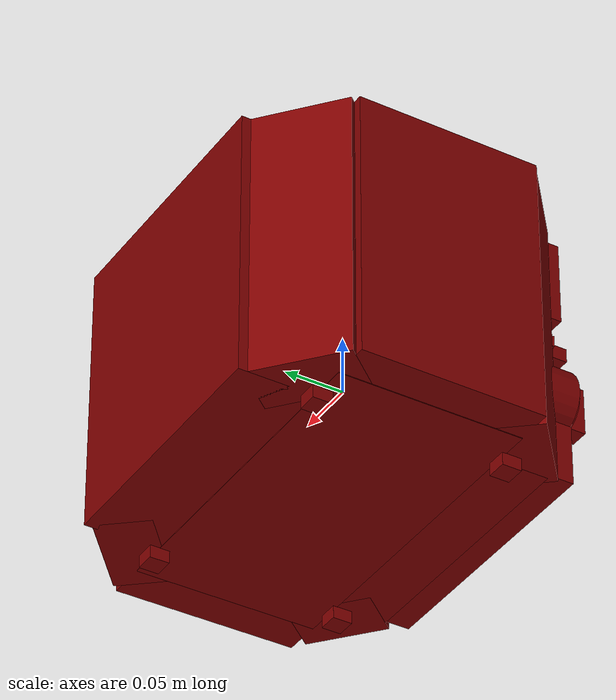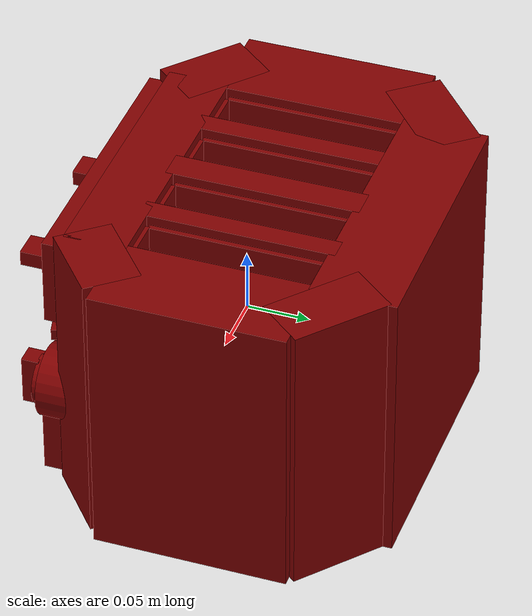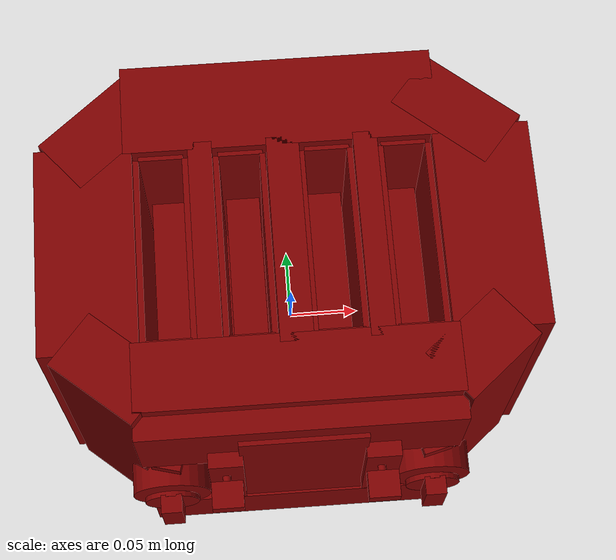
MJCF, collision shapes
<?xml version='1.0' encoding='UTF-8'?>
<mujoco model="model">
  <option timestep="0.002" gravity="0.0 0.0 -9.81"/>
  <compiler angle="radian"/>
  <asset>
    <mesh file="visuals/sideL_button_cancel.obj" name="sideL_button_cancel_vis"/>
    <mesh file="visuals/sideL_knob_doneness.obj" name="sideL_knob_doneness_vis"/>
    <mesh file="visuals/sideL_lever.obj" name="sideL_lever_vis"/>
    <mesh file="visuals/sideR_button_cancel.obj" name="sideR_button_cancel_vis"/>
    <mesh file="visuals/sideR_knob_doneness.obj" name="sideR_knob_doneness_vis"/>
    <mesh file="visuals/sideR_lever.obj" name="sideR_lever_vis"/>
    <mesh file="visuals/Body001.obj" name="Body001_vis"/>
    <mesh file="visuals/Body002.obj" name="Body002_vis"/>
    <texture file="visuals/T_BC001.png" name="Body001_material" type="2d"/>
    <material name="Body001_material" rgba="1 1 1 1.0" texture="Body001_material" shininess="0.5" specular="0.3103448502657381"/>
    <texture file="visuals/T_BC001.png" name="sideL_button_cancel_material" type="2d"/>
    <material name="sideL_button_cancel_material" rgba="1 1 1 1.0" texture="sideL_button_cancel_material" shininess="0.5" specular="0.3103448502657381"/>
    <texture file="visuals/T_BC001.png" name="sideL_knob_doneness_material" type="2d"/>
    <material name="sideL_knob_doneness_material" rgba="1 1 1 1.0" texture="sideL_knob_doneness_material" shininess="0.5" specular="0.3103448502657381"/>
    <texture file="visuals/T_BC001.png" name="sideL_lever_material" type="2d"/>
    <material name="sideL_lever_material" rgba="1 1 1 1.0" texture="sideL_lever_material" shininess="0.5" specular="0.3103448502657381"/>
    <texture file="visuals/T_BC001.png" name="sideR_button_cancel_material" type="2d"/>
    <material name="sideR_button_cancel_material" rgba="1 1 1 1.0" texture="sideR_button_cancel_material" shininess="0.5" specular="0.3103448502657381"/>
    <texture file="visuals/T_BC001.png" name="sideR_knob_doneness_material" type="2d"/>
    <material name="sideR_knob_doneness_material" rgba="1 1 1 1.0" texture="sideR_knob_doneness_material" shininess="0.5" specular="0.3103448502657381"/>
    <texture file="visuals/T_BC001.png" name="sideR_lever_material" type="2d"/>
    <material name="sideR_lever_material" rgba="1 1 1 1.0" texture="sideR_lever_material" shininess="0.5" specular="0.3103448502657381"/>
    <texture file="visuals/T_BC001.png" name="Body002_material" type="2d"/>
    <material name="Body002_material" rgba="1 1 1 1.0" texture="Body002_material" shininess="1" specular="1"/>
  </asset>
  <default>
    <default class="visual">
      <geom conaffinity="0" contype="0" group="1" type="mesh"/>
    </default>
    <default class="collision_1">
      <geom group="0" rgba="0.5 0 0 0.5" solref="0.004 1" solimp="0.998 0.998 0.001"/>
    </default>
    <default class="collision_2">
      <geom group="0" rgba="0.5 0 0 0.5" solref="0.004 1" solimp="0.998 0.998 0.001"/>
    </default>
    <default class="collision_3">
      <geom group="0" rgba="0.5 0 0 0.5" solref="0.004 1" solimp="0.998 0.998 0.001"/>
    </default>
    <default class="collision_4">
      <geom group="0" rgba="0.5 0 0 0.5" solref="0.004 1" solimp="0.998 0.998 0.001"/>
    </default>
    <default class="collision_5">
      <geom group="0" rgba="0.5 0 0 0.5" solref="0.004 1" solimp="0.998 0.998 0.001"/>
    </default>
    <default class="collision_6">
      <geom group="0" rgba="0.5 0 0 0.5" solref="0.004 1" solimp="0.998 0.998 0.001"/>
    </default>
    <default class="collision_7">
      <geom group="0" rgba="0.5 0 0 0.5" solref="0.004 1" solimp="0.998 0.998 0.001"/>
    </default>
    <default class="collision_8">
      <geom group="0" rgba="0.5 0 0 0.5" solref="0.004 1" solimp="0.998 0.998 0.001"/>
    </default>
    <default class="spawn">
      <geom group="0" rgba="1 1 1 0.5" contype="0" conaffinity="0"/>
      <site group="0" rgba="1 1 1 0.5"/>
    </default>
    <default class="region">
      <geom group="1" conaffinity="0" contype="0" rgba="0 1 0 0" mass="0"/>
    </default>
  </default>
  <worldbody>
    <body>
      <body name="object">
        <geom mesh="Body001_vis" type="mesh" solimp="0.998 0.998 0.001" solref="0.001 1" friction="0.95 0.3 0.1" class="visual" material="Body001_material"/>
        <geom type="box" pos="-0.14172929525375366 0.015817148610949516 0.0056557320058345795" size="0.034604761749506 0.07647000253200531 0.1145644336938858" quat="1.0 0.0 0.0 0.0" class="collision_1"/>
        <geom type="box" pos="0.14105713367462158 0.015817148610949516 0.0056557320058345795" size="0.034604761749506 0.07647000253200531 0.11456446349620819" quat="1.0 0.0 0.0 0.0" class="collision_1"/>
        <geom type="box" pos="0.00014714288408868015 0.015817148610949516 0.0056557320058345795" size="0.011663300916552544 0.07646971195936203 0.1145649179816246" quat="1.0 0.0 0.0 0.0" class="collision_1"/>
        <geom type="box" pos="-0.0009645466925576329 0.1206241250038147 0.0056557320058345795" size="0.11235687136650085 0.033788811415433884 0.1145649179816246" quat="1.0 0.0 0.0 0.0" class="collision_1"/>
        <geom type="box" pos="-0.0009645466925576329 -0.07915101200342178 0.0056557320058345795" size="0.11235687136650085 0.024625087156891823 0.1145649179816246" quat="1.0 0.0 0.0 0.0" class="collision_1"/>
        <geom type="box" pos="-0.05883101373910904 0.015817148610949516 0.0056557320058345795" size="0.00859940703958273 0.07646976411342621 0.1145649179816246" quat="1.0 0.0 0.0 0.0" class="collision_1"/>
        <geom type="box" pos="0.05899663269519806 0.015817148610949516 0.0056557320058345795" size="0.00859940703958273 0.076469786465168 0.1145649179816246" quat="1.0 0.0 0.0 0.0" class="collision_1"/>
        <geom type="box" pos="-0.12707635760307312 0.10570249706506729 0.0056557320058345795" size="0.04039281979203224 0.022680848836898804 0.1145649179816246" quat="0.9396926164627075 0.0 0.0 0.3420201539993286" class="collision_1"/>
        <geom type="box" pos="0.12562860548496246 0.10570249706506729 0.0056557320058345795" size="0.04039281979203224 0.022680848836898804 0.1145649179816246" quat="0.9396926164627075 0.0 0.0 -0.3420201539993286" class="collision_1"/>
        <geom type="box" pos="0.12562860548496246 -0.07143163681030273 0.0056557320058345795" size="0.033461496233940125 0.022680848836898804 0.1145649179816246" quat="0.3420201539993286 0.0 0.0 -0.9396926164627075" class="collision_1"/>
        <geom type="box" pos="-0.12707635760307312 -0.07143167406320572 0.0056557320058345795" size="0.03591546788811684 0.022680848836898804 0.1145649179816246" quat="0.34202003479003906 0.0 0.0 0.9396926760673523" class="collision_1"/>
        <geom type="box" pos="-0.0009645466925576329 0.015817148610949516 -0.07156917452812195" size="0.1447247713804245 0.07647000253200531 0.03792557120323181" quat="1.0 0.0 0.0 0.0" class="collision_1"/>
        <geom type="box" pos="-0.11608884483575821 0.09239614754915237 -0.11462190747261047" size="0.008337839506566525 0.008143988437950611 0.005357668269425631" quat="1.0 0.0 0.0 0.0" class="collision_1"/>
        <geom type="box" pos="0.11664550751447678 0.09239614754915237 -0.11462190747261047" size="0.008337841369211674 0.00814399030059576 0.005357668269425631" quat="1.0 0.0 0.0 0.0" class="collision_1"/>
        <geom type="box" pos="-0.11608884483575821 -0.06530660390853882 -0.11462190747261047" size="0.008337843231856823 0.00814399216324091 0.005357668269425631" quat="1.0 0.0 0.0 0.0" class="collision_1"/>
        <geom type="box" pos="0.11664550751447678 -0.06530660390853882 -0.11462190747261047" size="0.008337845094501972 0.008143994025886059 0.005357668269425631" quat="1.0 0.0 0.0 0.0" class="collision_1"/>
        <geom type="cylinder" pos="-0.09793946892023087 -0.11229516565799713 -0.030136441811919212" size="0.029281342402100563 0.013490691781044006" quat="0.7071068286895752 0.7071067690849304 -1.5700924318127872e-16 -5.9269340452702814e-24" class="collision_1"/>
        <geom type="cylinder" pos="0.0977095291018486 -0.11229516565799713 -0.029215261340141296" size="0.028824597597122192 0.01328025572001934" quat="0.7071068286895752 0.7071067690849304 -1.5700922994638892e-16 -1.0606174128406802e-23" class="collision_1"/>
        <geom type="box" pos="-0.0009645466925576329 -0.11419861763715744 -0.07915717363357544" size="0.11235687136650085 0.01184391975402832 0.02652960829436779" quat="1.0 0.0 0.0 0.0" class="collision_1"/>
        <geom type="box" pos="-0.05459017679095268 -0.12111537158489227 0.01986023038625717" size="0.012338492088019848 0.010644311085343361 0.046500224620103836" quat="1.0 0.0 0.0 0.0" class="collision_1"/>
        <geom type="box" pos="0.00036077946424484253 -0.11444919556379318 0.01587756723165512" size="0.04511181637644768 0.009701150469481945 0.0764128714799881" quat="1.0 0.0 0.0 0.0" class="collision_1"/>
        <geom type="box" pos="-0.0009645466925576329 -0.10994076728820801 0.07458801567554474" size="0.11348836869001389 0.010791265405714512 0.03556706756353378" quat="1.0 0.0 0.0 0.0" class="collision_1"/>
        <geom type="box" pos="0.05618317797780037 -0.12111537158489227 0.01986023038625717" size="0.012338492088019848 0.010644311085343361 0.046500224620103836" quat="1.0 0.0 0.0 0.0" class="collision_1"/>
        <body name="sideL_button_cancel">
          <joint axis="0.23688821494579315 0.9715368747711182 0.0" pos="-0.09814552962779999 -0.11692027747631073 0.023036032915115356" limited="true" name="sideL_button_cancel_joint" range="0.0 0.002" type="slide" damping="1" frictionloss="1" armature=".01" stiffness="4" springref="-1"/>
          <geom mesh="sideL_button_cancel_vis" type="mesh" solimp="0.998 0.998 0.001" solref="0.001 1" friction="0.95 0.3 0.1" class="visual" material="sideL_button_cancel_material"/>
          <geom class="collision_2" type="box" pos="-0.09797513484954834 -0.11681856960058212 0.023036032915115356" size="0.01073279045522213 0.003315222216770053 0.004554397892206907" quat="0.9918488264083862 0.0 0.0 -0.12742026150226593" name="sideL_button_cancel_main"/>
        </body>
        <body name="sideL_knob_doneness">
          <joint axis="0.0 1.0 0.0" pos="-0.097976453602314 -0.13500334322452545 -0.029979873448610306" limited="true" name="sideL_knob_doneness_joint" range="0.0 4.974188368183839" type="hinge" damping="0.05" frictionloss="0.75" armature="1"/>
          <geom mesh="sideL_knob_doneness_vis" type="mesh" solimp="0.998 0.998 0.001" solref="0.001 1" friction="0.95 0.3 0.1" class="visual" material="sideL_knob_doneness_material"/>
          <geom type="cylinder" pos="-0.09797513484954834 -0.12962616980075836 -0.02997979149222374" size="0.020374925807118416 0.0019433266716077924" quat="0.7071068286895752 0.7071067690849304 -1.5700922994638892e-16 -5.926933650839829e-24" class="collision_3" friction="100 0.5 0.01"/>
          <geom class="collision_3" type="box" pos="-0.09797513484954834 -0.13714677095413208 -0.02997979149222374" size="0.007797203026711941 0.006897462531924248 0.019859323278069496" quat="1.0 0.0 0.0 0.0" name="sideL_knob_doneness_main" friction="100 0.5 0.01"/>
        </body>
        <body name="sideL_lever">
          <joint axis="0.0 0.0 -1.0" pos="-0.05451972037553787 -0.1397016942501068 0.053542591631412506" limited="true" name="sideL_lever_joint" range="0.0 0.06" type="slide" damping="1" frictionloss="1" armature=".1" stiffness="2.8" springref="-0.5"/>
          <geom class="region" name="reg_sideL_slotR" type="box" pos="-0.031049706041812897 0.016001909971237183 0.11891322955489159" size="0.014777229934930802 0.06721278822422028 0.07600023022294045"/>
          <geom class="region" name="reg_sideL_slotL" type="box" pos="-0.08729702979326248 0.016001909971237183 0.11891299858689308" size="0.01556669718027115 0.06721278822422028 0.07599999925494194"/>
          <geom mesh="sideL_lever_vis" type="mesh" solimp="0.998 0.998 0.001" solref="0.001 1" friction="0.95 0.3 0.1" class="visual" material="sideL_lever_material"/>
          <geom type="cylinder" pos="-0.054409731179475784 -0.13891613483428955 0.053396500647068024" size="0.0029476557392627 0.003998193424195051" quat="0.7071068286895752 0.7071067690849304 -1.5700922994638892e-16 -1.528541381711287e-23" class="collision_4"/>
          <geom class="collision_4" type="box" pos="-0.054409731179475784 -0.14917054772377014 0.053396500647068024" size="0.011082443408668041 0.009575016796588898 0.006027932744473219" quat="1.0 0.0 0.0 0.0" name="sideL_lever_handle"/>
          <geom class="collision_4" type="box" pos="-0.08632217347621918 0.01587485894560814 0.041380397975444794" size="0.012550000101327896 0.06499999761581421 0.0007069805287756026" quat="1.0 0.0 0.0 0.0" name="sideL_slotL_floor"/>
          <geom class="collision_4" type="box" pos="-0.030671432614326477 0.01587485894560814 0.0413803905248642" size="0.012550000101327896 0.06499999761581421 0.0007069749990478158" quat="1.0 0.0 0.0 0.0" name="sideL_slotR_floor"/>
        </body>
        <body name="sideR_button_cancel">
          <joint axis="-0.2384166121482849 0.9711630344390869 0.0" pos="0.09814588725566864 -0.11692027747631073 0.023036032915115356" limited="true" name="sideR_button_cancel_joint" range="0.0 0.002" type="slide" damping="1" frictionloss="1" armature=".01" stiffness="4" springref="-1"/>
          <geom mesh="sideR_button_cancel_vis" type="mesh" solimp="0.998 0.998 0.001" solref="0.001 1" friction="0.95 0.3 0.1" class="visual" material="sideR_button_cancel_material"/>
          <geom class="collision_5" type="box" pos="0.09797549247741699 -0.11681856960058212 0.023036032915115356" size="0.010732791386544704 0.003315222216770053 0.004554397892206907" quat="3.893341826710639e-08 -0.12742029130458832 0.9918488264083862 2.894502415529132e-07" name="sideR_button_cancel_main"/>
        </body>
        <body name="sideR_knob_doneness">
          <joint axis="0.0 1.0 0.0" pos="0.09797417372465134 -0.13500334322452545 -0.029979873448610306" limited="true" name="sideR_knob_doneness_joint" range="0.0 4.974188368183839" type="hinge" damping="0.05" frictionloss="0.75" armature="1"/>
          <geom mesh="sideR_knob_doneness_vis" type="mesh" solimp="0.998 0.998 0.001" solref="0.001 1" friction="0.95 0.3 0.1" class="visual" material="sideR_knob_doneness_material"/>
          <geom type="cylinder" pos="0.09797549247741699 -0.1295967847108841 -0.02997979149222374" size="0.02034541219472885 0.0021463471930474043" quat="0.7071068286895752 0.7071067690849304 -1.5700922994638892e-16 -5.926933650839829e-24" class="collision_6" friction="100 0.5 0.01"/>
          <geom class="collision_6" type="box" pos="0.09812764823436737 -0.13714677095413208 -0.02997979149222374" size="0.007797203026711941 0.006897462531924248 0.019859323278069496" quat="1.0 0.0 0.0 0.0" name="sideR_knob_doneness_main" friction="100 0.5 0.01"/>
        </body>
        <body name="sideR_lever">
          <joint axis="0.0 0.0 -1.0" pos="0.05440133064985275 -0.1397016942501068 0.053542591631412506" limited="true" name="sideR_lever_joint" range="0.0 0.06" type="slide" damping="1" frictionloss="1" armature=".1" stiffness="2.8" springref="-0.5"/>
          <geom class="region" name="reg_sideR_slotR" type="box" pos="0.08695735037326813 0.016001909971237183 0.11891322955489159" size="0.01480329579114914 0.06721278822422028 0.07600023022294045"/>
          <geom class="region" name="reg_sideR_slotL" type="box" pos="0.03063328005373478 0.016001909971237183 0.11891322955489159" size="0.014988027349114419 0.06721278822422028 0.07600023022294045"/>
          <geom mesh="sideR_lever_vis" type="mesh" solimp="0.998 0.998 0.001" solref="0.001 1" friction="0.95 0.3 0.1" class="visual" material="sideR_lever_material"/>
          <geom type="cylinder" pos="0.05441014841198921 -0.13879063725471497 0.053396500647068024" size="0.0029476557392627 0.003998193424195051" quat="0.7071068286895752 0.7071067690849304 -1.5700922994638892e-16 -1.528541381711287e-23" class="collision_7"/>
          <geom class="collision_7" type="box" pos="0.05441014841198921 -0.14904505014419556 0.053396500647068024" size="0.011082446202635765 0.00957502145320177 0.006027935538440943" quat="1.0 0.0 0.0 0.0" name="sideR_lever_handle"/>
          <geom class="collision_7" type="box" pos="0.030771881341934204 0.01587485894560814 0.0413803905248642" size="0.012550000101327896 0.06499999761581421 0.0007069749990478158" quat="1.0 0.0 0.0 0.0" name="sideR_slotL_floor"/>
          <geom class="collision_7" type="box" pos="0.08713148534297943 0.01587485894560814 0.0413803905248642" size="0.012550000101327896 0.06499999761581421 0.0007069749990478158" quat="1.0 0.0 0.0 0.0" name="sideR_slotR_floor"/>
        </body>
        <body name="Body002">
          <geom mesh="Body002_vis" type="mesh" solimp="0.998 0.998 0.001" solref="0.001 1" friction="0.95 0.3 0.1" class="visual" material="Body002_material"/>
          <geom type="box" pos="-0.06984309107065201 0.015817148610949516 0.03871316835284233" size="0.0021027105394750834 0.06823010742664337 0.07406066358089447" quat="1.0 0.0 0.0 0.0" class="collision_8"/>
          <geom type="box" pos="-0.104941725730896 0.015817148610949516 0.03871316835284233" size="0.0021027105394750834 0.06823010742664337 0.07406066358089447" quat="1.0 0.0 0.0 0.0" class="collision_8"/>
          <geom type="box" pos="-0.04778110235929489 0.015817148610949516 0.03871316835284233" size="0.0021027105394750834 0.06823010742664337 0.07406066358089447" quat="1.0 0.0 0.0 0.0" class="collision_8"/>
          <geom type="box" pos="-0.014437403529882431 0.015817148610949516 0.03871316835284233" size="0.0021027105394750834 0.06823010742664337 0.07406066358089447" quat="1.0 0.0 0.0 0.0" class="collision_8"/>
          <geom type="box" pos="0.013390796259045601 0.015817148610949516 0.03871316835284233" size="0.0021027105394750834 0.06823010742664337 0.07406066358089447" quat="1.0 0.0 0.0 0.0" class="collision_8"/>
          <geom type="box" pos="0.04798801988363266 0.015817148610949516 0.03871316835284233" size="0.0021027105394750834 0.06823010742664337 0.07406066358089447" quat="1.0 0.0 0.0 0.0" class="collision_8"/>
          <geom type="box" pos="0.07005001604557037 0.015817148610949516 0.03871316835284233" size="0.0021027105394750834 0.06823010742664337 0.07406066358089447" quat="1.0 0.0 0.0 0.0" class="collision_8"/>
          <geom type="box" pos="0.10389512777328491 0.015817148610949516 0.03871316835284233" size="0.0021027105394750834 0.06823010742664337 0.07406066358089447" quat="1.0 0.0 0.0 0.0" class="collision_8"/>
          <geom type="box" pos="0.08634581416845322 0.08564980328083038 0.03871316835284233" size="0.0021027105394750834 0.01603742688894272 0.07406066358089447" quat="0.7071068286895752 0.0 0.0 -0.7071067094802856" class="collision_8"/>
          <geom type="box" pos="0.08634581416845322 -0.05323604494333267 0.03871316835284233" size="0.0021027105394750834 0.01603742688894272 0.07406066358089447" quat="0.7071068286895752 0.0 0.0 -0.7071067094802856" class="collision_8"/>
          <geom type="box" pos="0.031692229211330414 0.08564980328083038 0.03871316835284233" size="0.0021027105394750834 0.01603742688894272 0.07406066358089447" quat="0.7071068286895752 0.0 0.0 -0.7071067094802856" class="collision_8"/>
          <geom type="box" pos="0.031692229211330414 -0.05323604494333267 0.03871316835284233" size="0.0021027105394750834 0.01603742688894272 0.07406066358089447" quat="0.7071068286895752 0.0 0.0 -0.7071067094802856" class="collision_8"/>
          <geom type="box" pos="-0.030231785029172897 0.08564980328083038 0.03871316835284233" size="0.0021027105394750834 0.01603742688894272 0.07406066358089447" quat="0.7071068286895752 0.0 0.0 -0.7071067094802856" class="collision_8"/>
          <geom type="box" pos="-0.030231785029172897 -0.05323604494333267 0.03871316835284233" size="0.0021027105394750834 0.01603742688894272 0.07406066358089447" quat="0.7071068286895752 0.0 0.0 -0.7071067094802856" class="collision_8"/>
          <geom type="box" pos="-0.08714170753955841 0.08564980328083038 0.03871316835284233" size="0.0021027105394750834 0.01603742688894272 0.07406066358089447" quat="0.7071068286895752 0.0 0.0 -0.7071067094802856" class="collision_8"/>
          <geom type="box" pos="-0.08714170753955841 -0.05323604494333267 0.03871316835284233" size="0.0021027105394750834 0.01603742688894272 0.07406066358089447" quat="0.7071068286895752 0.0 0.0 -0.7071067094802856" class="collision_8"/>
        </body>
        <geom class="region" name="reg_main" type="box" pos="3.725290298461914e-09 0.011790886521339417 0.0" size="0.1806974390745163 0.14754140174388886 0.11992426013946533"/>
      </body>
    </body>
  </worldbody>
  <actuator>
    <motor name="sideL_button_cancel_joint_actuator" joint="sideL_button_cancel_joint" gear="0.1"/>
    <motor name="sideL_knob_doneness_joint_actuator" joint="sideL_knob_doneness_joint" gear="10"/>
    <motor name="sideL_lever_joint_actuator" joint="sideL_lever_joint" gear="5"/>
    <motor name="sideR_button_cancel_joint_actuator" joint="sideR_button_cancel_joint" gear="0.1"/>
    <motor name="sideR_knob_doneness_joint_actuator" joint="sideR_knob_doneness_joint" gear="10"/>
    <motor name="sideR_lever_joint_actuator" joint="sideR_lever_joint" gear="5"/>
  </actuator>
</mujoco>
